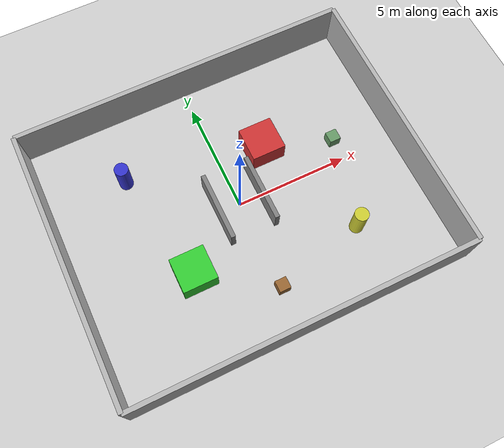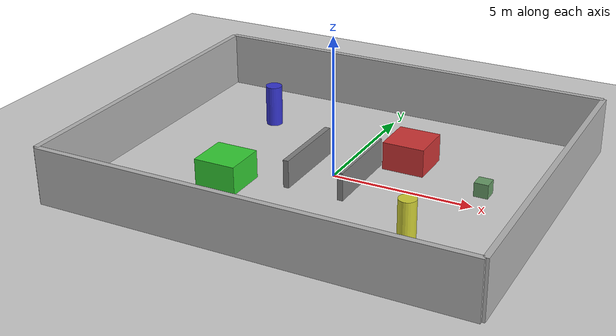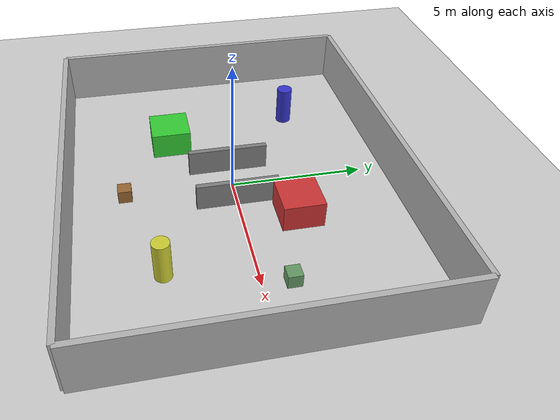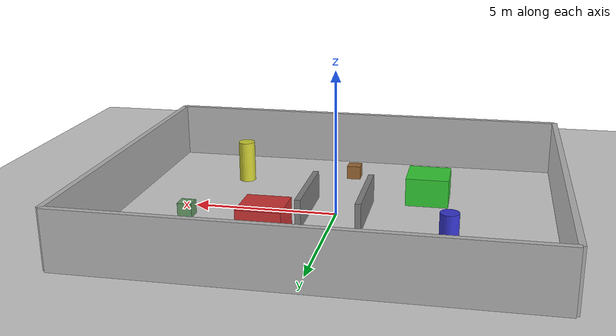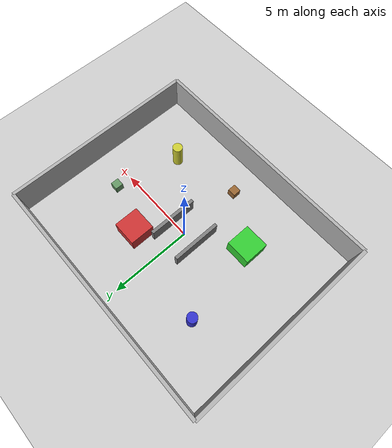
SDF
<?xml version="1.0" ?>
<sdf version="1.8">
  <world name="obstacle_course">

    <!-- Physics settings -->
    <physics name="1ms" type="ignored">
      <max_step_size>0.001</max_step_size>
      <real_time_factor>1.0</real_time_factor>
    </physics>

    <!-- Plugins -->
    <plugin
      filename="gz-sim-physics-system"
      name="gz::sim::systems::Physics">
    </plugin>
    <plugin
      filename="gz-sim-user-commands-system"
      name="gz::sim::systems::UserCommands">
    </plugin>
    <plugin
      filename="gz-sim-scene-broadcaster-system"
      name="gz::sim::systems::SceneBroadcaster">
    </plugin>
    <plugin
      filename="gz-sim-sensors-system"
      name="gz::sim::systems::Sensors">
      <render_engine>ogre2</render_engine>
    </plugin>

    <!-- Sun light -->
    <light type="directional" name="sun">
      <cast_shadows>true</cast_shadows>
      <pose>0 0 10 0 0 0</pose>
      <diffuse>0.8 0.8 0.8 1</diffuse>
      <specular>0.2 0.2 0.2 1</specular>
      <attenuation>
        <range>1000</range>
        <constant>0.9</constant>
        <linear>0.01</linear>
        <quadratic>0.001</quadratic>
      </attenuation>
      <direction>-0.5 0.1 -0.9</direction>
    </light>

    <!-- Ground plane -->
    <model name="ground_plane">
      <static>true</static>
      <link name="link">
        <collision name="collision">
          <geometry>
            <plane>
              <normal>0 0 1</normal>
              <size>30 30</size>
            </plane>
          </geometry>
        </collision>
        <visual name="visual">
          <geometry>
            <plane>
              <normal>0 0 1</normal>
              <size>30 30</size>
            </plane>
          </geometry>
          <material>
            <ambient>0.8 0.8 0.8 1</ambient>
            <diffuse>0.8 0.8 0.8 1</diffuse>
          </material>
        </visual>
      </link>
    </model>

    <!-- Room Walls -->
    <!-- North Wall -->
    <model name="wall_north">
      <static>true</static>
      <pose>0 6 1 0 0 0</pose>
      <link name="link">
        <collision name="collision">
          <geometry>
            <box>
              <size>15 0.2 2</size>
            </box>
          </geometry>
        </collision>
        <visual name="visual">
          <geometry>
            <box>
              <size>15 0.2 2</size>
            </box>
          </geometry>
          <material>
            <ambient>0.7 0.7 0.7 1</ambient>
            <diffuse>0.7 0.7 0.7 1</diffuse>
          </material>
        </visual>
      </link>
    </model>

    <!-- South Wall -->
    <model name="wall_south">
      <static>true</static>
      <pose>0 -6 1 0 0 0</pose>
      <link name="link">
        <collision name="collision">
          <geometry>
            <box>
              <size>15 0.2 2</size>
            </box>
          </geometry>
        </collision>
        <visual name="visual">
          <geometry>
            <box>
              <size>15 0.2 2</size>
            </box>
          </geometry>
          <material>
            <ambient>0.7 0.7 0.7 1</ambient>
            <diffuse>0.7 0.7 0.7 1</diffuse>
          </material>
        </visual>
      </link>
    </model>

    <!-- East Wall -->
    <model name="wall_east">
      <static>true</static>
      <pose>7.5 0 1 0 0 0</pose>
      <link name="link">
        <collision name="collision">
          <geometry>
            <box>
              <size>0.2 12 2</size>
            </box>
          </geometry>
        </collision>
        <visual name="visual">
          <geometry>
            <box>
              <size>0.2 12 2</size>
            </box>
          </geometry>
          <material>
            <ambient>0.7 0.7 0.7 1</ambient>
            <diffuse>0.7 0.7 0.7 1</diffuse>
          </material>
        </visual>
      </link>
    </model>

    <!-- West Wall -->
    <model name="wall_west">
      <static>true</static>
      <pose>-7.5 0 1 0 0 0</pose>
      <link name="link">
        <collision name="collision">
          <geometry>
            <box>
              <size>0.2 12 2</size>
            </box>
          </geometry>
        </collision>
        <visual name="visual">
          <geometry>
            <box>
              <size>0.2 12 2</size>
            </box>
          </geometry>
          <material>
            <ambient>0.7 0.7 0.7 1</ambient>
            <diffuse>0.7 0.7 0.7 1</diffuse>
          </material>
        </visual>
      </link>
    </model>

    <!-- Obstacles -->
    <!-- Large Box Obstacle 1 -->
    <model name="box_obstacle_1">
      <static>true</static>
      <pose>2 2 0.5 0 0 0</pose>
      <link name="link">
        <collision name="collision">
          <geometry>
            <box>
              <size>1.5 1.5 1</size>
            </box>
          </geometry>
        </collision>
        <visual name="visual">
          <geometry>
            <box>
              <size>1.5 1.5 1</size>
            </box>
          </geometry>
          <material>
            <ambient>0.8 0.2 0.2 1</ambient>
            <diffuse>0.8 0.2 0.2 1</diffuse>
          </material>
        </visual>
      </link>
    </model>

    <!-- Large Box Obstacle 2 -->
    <model name="box_obstacle_2">
      <static>true</static>
      <pose>-3 -2 0.5 0 0 0</pose>
      <link name="link">
        <collision name="collision">
          <geometry>
            <box>
              <size>1.5 1.5 1</size>
            </box>
          </geometry>
        </collision>
        <visual name="visual">
          <geometry>
            <box>
              <size>1.5 1.5 1</size>
            </box>
          </geometry>
          <material>
            <ambient>0.2 0.8 0.2 1</ambient>
            <diffuse>0.2 0.8 0.2 1</diffuse>
          </material>
        </visual>
      </link>
    </model>

    <!-- Cylinder Obstacle 1 (column) -->
    <model name="cylinder_obstacle_1">
      <static>true</static>
      <pose>-4 3 0.75 0 0 0</pose>
      <link name="link">
        <collision name="collision">
          <geometry>
            <cylinder>
              <radius>0.3</radius>
              <length>1.5</length>
            </cylinder>
          </geometry>
        </collision>
        <visual name="visual">
          <geometry>
            <cylinder>
              <radius>0.3</radius>
              <length>1.5</length>
            </cylinder>
          </geometry>
          <material>
            <ambient>0.2 0.2 0.8 1</ambient>
            <diffuse>0.2 0.2 0.8 1</diffuse>
          </material>
        </visual>
      </link>
    </model>

    <!-- Cylinder Obstacle 2 -->
    <model name="cylinder_obstacle_2">
      <static>true</static>
      <pose>4 -3 0.75 0 0 0</pose>
      <link name="link">
        <collision name="collision">
          <geometry>
            <cylinder>
              <radius>0.3</radius>
              <length>1.5</length>
            </cylinder>
          </geometry>
        </collision>
        <visual name="visual">
          <geometry>
            <cylinder>
              <radius>0.3</radius>
              <length>1.5</length>
            </cylinder>
          </geometry>
          <material>
            <ambient>0.8 0.8 0.2 1</ambient>
            <diffuse>0.8 0.8 0.2 1</diffuse>
          </material>
        </visual>
      </link>
    </model>

    <!-- Small Box Obstacle 1 -->
    <model name="small_box_1">
      <static>true</static>
      <pose>0 -4 0.25 0 0 0</pose>
      <link name="link">
        <collision name="collision">
          <geometry>
            <box>
              <size>0.5 0.5 0.5</size>
            </box>
          </geometry>
        </collision>
        <visual name="visual">
          <geometry>
            <box>
              <size>0.5 0.5 0.5</size>
            </box>
          </geometry>
          <material>
            <ambient>0.6 0.4 0.2 1</ambient>
            <diffuse>0.6 0.4 0.2 1</diffuse>
          </material>
        </visual>
      </link>
    </model>

    <!-- Small Box Obstacle 2 -->
    <model name="small_box_2">
      <static>true</static>
      <pose>5 1 0.25 0 0 0</pose>
      <link name="link">
        <collision name="collision">
          <geometry>
            <box>
              <size>0.5 0.5 0.5</size>
            </box>
          </geometry>
        </collision>
        <visual name="visual">
          <geometry>
            <box>
              <size>0.5 0.5 0.5</size>
            </box>
          </geometry>
          <material>
            <ambient>0.4 0.6 0.4 1</ambient>
            <diffuse>0.4 0.6 0.4 1</diffuse>
          </material>
        </visual>
      </link>
    </model>

    <!-- Narrow Passage Wall 1 -->
    <model name="narrow_wall_1">
      <static>true</static>
      <pose>-1 0 0.5 0 0 1.57</pose>
      <link name="link">
        <collision name="collision">
          <geometry>
            <box>
              <size>3 0.2 1</size>
            </box>
          </geometry>
        </collision>
        <visual name="visual">
          <geometry>
            <box>
              <size>3 0.2 1</size>
            </box>
          </geometry>
          <material>
            <ambient>0.5 0.5 0.5 1</ambient>
            <diffuse>0.5 0.5 0.5 1</diffuse>
          </material>
        </visual>
      </link>
    </model>

    <!-- Narrow Passage Wall 2 (creates 0.8m gap for narrow passage) -->
    <model name="narrow_wall_2">
      <static>true</static>
      <pose>1 0 0.5 0 0 1.57</pose>
      <link name="link">
        <collision name="collision">
          <geometry>
            <box>
              <size>3 0.2 1</size>
            </box>
          </geometry>
        </collision>
        <visual name="visual">
          <geometry>
            <box>
              <size>3 0.2 1</size>
            </box>
          </geometry>
          <material>
            <ambient>0.5 0.5 0.5 1</ambient>
            <diffuse>0.5 0.5 0.5 1</diffuse>
          </material>
        </visual>
      </link>
    </model>

  </world>
</sdf>
